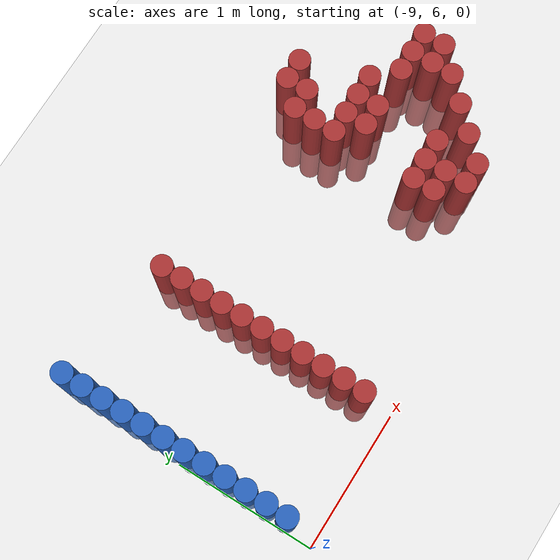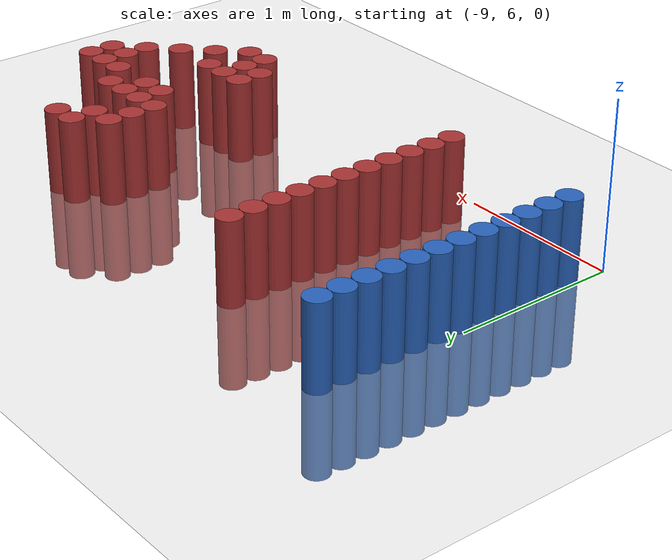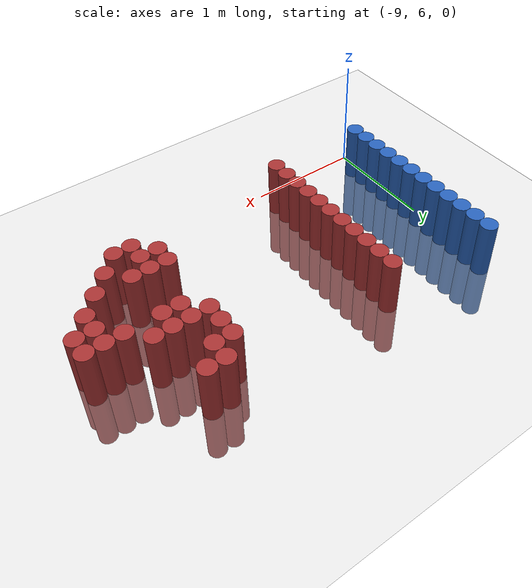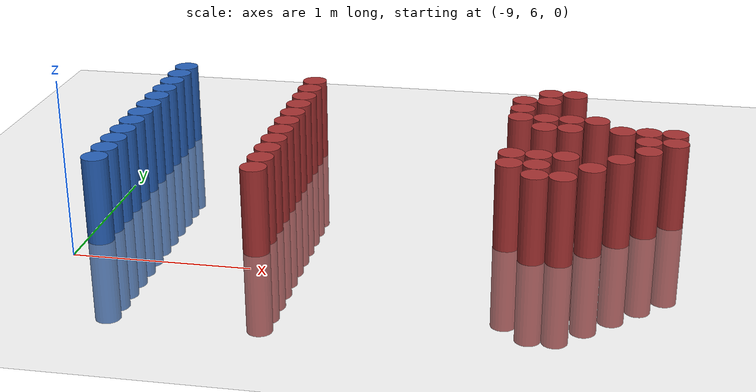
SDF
<sdf version="1.6">
 <world name="default">
  <model name="ground_plane">
   <static>1</static>
   <link name="link">
    <collision name="collision">
     <geometry><plane><normal>0 0 1</normal><size>100 100</size></plane></geometry>
     <surface><friction><ode><mu>100</mu><mu2>50</mu2></ode></friction></surface>
    </collision>
    <visual name="visual">
     <cast_shadows>0</cast_shadows>
     <geometry><plane><normal>0 0 1</normal><size>100 100</size></plane></geometry>
     <material>
      <script><uri>file://media/materials/scripts/gazebo.material</uri><name>Gazebo/Grey</name></script>
     </material>
    </visual>
   </link>
  </model>
  <model name="unit_cylinder_132">
   <static>1</static>
   <pose>-8.925000 6.225000 0.000000 0.000000 0.000000 0.000000</pose>
   <link name="link">
    <inertial>
     <mass>1</mass>
     <inertia><ixx>0.145833</ixx><ixy>0</ixy><ixz>0</ixz><iyy>0.145833</iyy><iyz>0</iyz><izz>0.125</izz></inertia>
    </inertial>
    <collision name="collision">
     <geometry><cylinder><radius>0.075000</radius><length>1</length></cylinder></geometry>
    </collision>
    <visual name="visual">
     <geometry><cylinder><radius>0.075000</radius><length>1</length></cylinder></geometry>
     <material>
      <ambient>0.152000 0.379000 0.720000 1</ambient>
      <diffuse>0.152000 0.379000 0.720000 1</diffuse>
     </material>
     <material>
      <script><name>Gazebo/Grey</name><uri>file://media/materials/scripts/gazebo.material</uri></script>
     </material>
    </visual>
   </link>
  </model>
  <model name="unit_cylinder_133">
   <static>1</static>
   <pose>-8.925000 6.375000 0.000000 0.000000 0.000000 0.000000</pose>
   <link name="link">
    <inertial>
     <mass>1</mass>
     <inertia><ixx>0.145833</ixx><ixy>0</ixy><ixz>0</ixz><iyy>0.145833</iyy><iyz>0</iyz><izz>0.125</izz></inertia>
    </inertial>
    <collision name="collision">
     <geometry><cylinder><radius>0.075000</radius><length>1</length></cylinder></geometry>
    </collision>
    <visual name="visual">
     <geometry><cylinder><radius>0.075000</radius><length>1</length></cylinder></geometry>
     <material>
      <ambient>0.152000 0.379000 0.720000 1</ambient>
      <diffuse>0.152000 0.379000 0.720000 1</diffuse>
     </material>
     <material>
      <script><name>Gazebo/Grey</name><uri>file://media/materials/scripts/gazebo.material</uri></script>
     </material>
    </visual>
   </link>
  </model>
  <model name="unit_cylinder_134">
   <static>1</static>
   <pose>-8.925000 6.525000 0.000000 0.000000 0.000000 0.000000</pose>
   <link name="link">
    <inertial>
     <mass>1</mass>
     <inertia><ixx>0.145833</ixx><ixy>0</ixy><ixz>0</ixz><iyy>0.145833</iyy><iyz>0</iyz><izz>0.125</izz></inertia>
    </inertial>
    <collision name="collision">
     <geometry><cylinder><radius>0.075000</radius><length>1</length></cylinder></geometry>
    </collision>
    <visual name="visual">
     <geometry><cylinder><radius>0.075000</radius><length>1</length></cylinder></geometry>
     <material>
      <ambient>0.152000 0.379000 0.720000 1</ambient>
      <diffuse>0.152000 0.379000 0.720000 1</diffuse>
     </material>
     <material>
      <script><name>Gazebo/Grey</name><uri>file://media/materials/scripts/gazebo.material</uri></script>
     </material>
    </visual>
   </link>
  </model>
  <model name="unit_cylinder_135">
   <static>1</static>
   <pose>-8.925000 6.675000 0.000000 0.000000 0.000000 0.000000</pose>
   <link name="link">
    <inertial>
     <mass>1</mass>
     <inertia><ixx>0.145833</ixx><ixy>0</ixy><ixz>0</ixz><iyy>0.145833</iyy><iyz>0</iyz><izz>0.125</izz></inertia>
    </inertial>
    <collision name="collision">
     <geometry><cylinder><radius>0.075000</radius><length>1</length></cylinder></geometry>
    </collision>
    <visual name="visual">
     <geometry><cylinder><radius>0.075000</radius><length>1</length></cylinder></geometry>
     <material>
      <ambient>0.152000 0.379000 0.720000 1</ambient>
      <diffuse>0.152000 0.379000 0.720000 1</diffuse>
     </material>
     <material>
      <script><name>Gazebo/Grey</name><uri>file://media/materials/scripts/gazebo.material</uri></script>
     </material>
    </visual>
   </link>
  </model>
  <model name="unit_cylinder_136">
   <static>1</static>
   <pose>-8.925000 6.825000 0.000000 0.000000 0.000000 0.000000</pose>
   <link name="link">
    <inertial>
     <mass>1</mass>
     <inertia><ixx>0.145833</ixx><ixy>0</ixy><ixz>0</ixz><iyy>0.145833</iyy><iyz>0</iyz><izz>0.125</izz></inertia>
    </inertial>
    <collision name="collision">
     <geometry><cylinder><radius>0.075000</radius><length>1</length></cylinder></geometry>
    </collision>
    <visual name="visual">
     <geometry><cylinder><radius>0.075000</radius><length>1</length></cylinder></geometry>
     <material>
      <ambient>0.152000 0.379000 0.720000 1</ambient>
      <diffuse>0.152000 0.379000 0.720000 1</diffuse>
     </material>
     <material>
      <script><name>Gazebo/Grey</name><uri>file://media/materials/scripts/gazebo.material</uri></script>
     </material>
    </visual>
   </link>
  </model>
  <model name="unit_cylinder_137">
   <static>1</static>
   <pose>-8.925000 6.975000 0.000000 0.000000 0.000000 0.000000</pose>
   <link name="link">
    <inertial>
     <mass>1</mass>
     <inertia><ixx>0.145833</ixx><ixy>0</ixy><ixz>0</ixz><iyy>0.145833</iyy><iyz>0</iyz><izz>0.125</izz></inertia>
    </inertial>
    <collision name="collision">
     <geometry><cylinder><radius>0.075000</radius><length>1</length></cylinder></geometry>
    </collision>
    <visual name="visual">
     <geometry><cylinder><radius>0.075000</radius><length>1</length></cylinder></geometry>
     <material>
      <ambient>0.152000 0.379000 0.720000 1</ambient>
      <diffuse>0.152000 0.379000 0.720000 1</diffuse>
     </material>
     <material>
      <script><name>Gazebo/Grey</name><uri>file://media/materials/scripts/gazebo.material</uri></script>
     </material>
    </visual>
   </link>
  </model>
  <model name="unit_cylinder_138">
   <static>1</static>
   <pose>-8.925000 7.125000 0.000000 0.000000 0.000000 0.000000</pose>
   <link name="link">
    <inertial>
     <mass>1</mass>
     <inertia><ixx>0.145833</ixx><ixy>0</ixy><ixz>0</ixz><iyy>0.145833</iyy><iyz>0</iyz><izz>0.125</izz></inertia>
    </inertial>
    <collision name="collision">
     <geometry><cylinder><radius>0.075000</radius><length>1</length></cylinder></geometry>
    </collision>
    <visual name="visual">
     <geometry><cylinder><radius>0.075000</radius><length>1</length></cylinder></geometry>
     <material>
      <ambient>0.152000 0.379000 0.720000 1</ambient>
      <diffuse>0.152000 0.379000 0.720000 1</diffuse>
     </material>
     <material>
      <script><name>Gazebo/Grey</name><uri>file://media/materials/scripts/gazebo.material</uri></script>
     </material>
    </visual>
   </link>
  </model>
  <model name="unit_cylinder_139">
   <static>1</static>
   <pose>-8.925000 7.275000 0.000000 0.000000 0.000000 0.000000</pose>
   <link name="link">
    <inertial>
     <mass>1</mass>
     <inertia><ixx>0.145833</ixx><ixy>0</ixy><ixz>0</ixz><iyy>0.145833</iyy><iyz>0</iyz><izz>0.125</izz></inertia>
    </inertial>
    <collision name="collision">
     <geometry><cylinder><radius>0.075000</radius><length>1</length></cylinder></geometry>
    </collision>
    <visual name="visual">
     <geometry><cylinder><radius>0.075000</radius><length>1</length></cylinder></geometry>
     <material>
      <ambient>0.152000 0.379000 0.720000 1</ambient>
      <diffuse>0.152000 0.379000 0.720000 1</diffuse>
     </material>
     <material>
      <script><name>Gazebo/Grey</name><uri>file://media/materials/scripts/gazebo.material</uri></script>
     </material>
    </visual>
   </link>
  </model>
  <model name="unit_cylinder_140">
   <static>1</static>
   <pose>-8.925000 7.425000 0.000000 0.000000 0.000000 0.000000</pose>
   <link name="link">
    <inertial>
     <mass>1</mass>
     <inertia><ixx>0.145833</ixx><ixy>0</ixy><ixz>0</ixz><iyy>0.145833</iyy><iyz>0</iyz><izz>0.125</izz></inertia>
    </inertial>
    <collision name="collision">
     <geometry><cylinder><radius>0.075000</radius><length>1</length></cylinder></geometry>
    </collision>
    <visual name="visual">
     <geometry><cylinder><radius>0.075000</radius><length>1</length></cylinder></geometry>
     <material>
      <ambient>0.152000 0.379000 0.720000 1</ambient>
      <diffuse>0.152000 0.379000 0.720000 1</diffuse>
     </material>
     <material>
      <script><name>Gazebo/Grey</name><uri>file://media/materials/scripts/gazebo.material</uri></script>
     </material>
    </visual>
   </link>
  </model>
  <model name="unit_cylinder_141">
   <static>1</static>
   <pose>-8.925000 7.575000 0.000000 0.000000 0.000000 0.000000</pose>
   <link name="link">
    <inertial>
     <mass>1</mass>
     <inertia><ixx>0.145833</ixx><ixy>0</ixy><ixz>0</ixz><iyy>0.145833</iyy><iyz>0</iyz><izz>0.125</izz></inertia>
    </inertial>
    <collision name="collision">
     <geometry><cylinder><radius>0.075000</radius><length>1</length></cylinder></geometry>
    </collision>
    <visual name="visual">
     <geometry><cylinder><radius>0.075000</radius><length>1</length></cylinder></geometry>
     <material>
      <ambient>0.152000 0.379000 0.720000 1</ambient>
      <diffuse>0.152000 0.379000 0.720000 1</diffuse>
     </material>
     <material>
      <script><name>Gazebo/Grey</name><uri>file://media/materials/scripts/gazebo.material</uri></script>
     </material>
    </visual>
   </link>
  </model>
  <model name="unit_cylinder_142">
   <static>1</static>
   <pose>-8.925000 7.725000 0.000000 0.000000 0.000000 0.000000</pose>
   <link name="link">
    <inertial>
     <mass>1</mass>
     <inertia><ixx>0.145833</ixx><ixy>0</ixy><ixz>0</ixz><iyy>0.145833</iyy><iyz>0</iyz><izz>0.125</izz></inertia>
    </inertial>
    <collision name="collision">
     <geometry><cylinder><radius>0.075000</radius><length>1</length></cylinder></geometry>
    </collision>
    <visual name="visual">
     <geometry><cylinder><radius>0.075000</radius><length>1</length></cylinder></geometry>
     <material>
      <ambient>0.152000 0.379000 0.720000 1</ambient>
      <diffuse>0.152000 0.379000 0.720000 1</diffuse>
     </material>
     <material>
      <script><name>Gazebo/Grey</name><uri>file://media/materials/scripts/gazebo.material</uri></script>
     </material>
    </visual>
   </link>
  </model>
  <model name="unit_cylinder_143">
   <static>1</static>
   <pose>-8.925000 7.875000 0.000000 0.000000 0.000000 0.000000</pose>
   <link name="link">
    <inertial>
     <mass>1</mass>
     <inertia><ixx>0.145833</ixx><ixy>0</ixy><ixz>0</ixz><iyy>0.145833</iyy><iyz>0</iyz><izz>0.125</izz></inertia>
    </inertial>
    <collision name="collision">
     <geometry><cylinder><radius>0.075000</radius><length>1</length></cylinder></geometry>
    </collision>
    <visual name="visual">
     <geometry><cylinder><radius>0.075000</radius><length>1</length></cylinder></geometry>
     <material>
      <ambient>0.152000 0.379000 0.720000 1</ambient>
      <diffuse>0.152000 0.379000 0.720000 1</diffuse>
     </material>
     <material>
      <script><name>Gazebo/Grey</name><uri>file://media/materials/scripts/gazebo.material</uri></script>
     </material>
    </visual>
   </link>
  </model>
  <model name="unit_cylinder_172">
   <static>1</static>
   <pose>-8.025000 6.225000 0.000000 0.000000 0.000000 0.000000</pose>
   <link name="link">
    <inertial>
     <mass>1</mass>
     <inertia><ixx>0.145833</ixx><ixy>0</ixy><ixz>0</ixz><iyy>0.145833</iyy><iyz>0</iyz><izz>0.125</izz></inertia>
    </inertial>
    <collision name="collision">
     <geometry><cylinder><radius>0.075000</radius><length>1</length></cylinder></geometry>
    </collision>
    <visual name="visual">
     <geometry><cylinder><radius>0.075000</radius><length>1</length></cylinder></geometry>
     <material>
      <ambient>0.648000 0.192000 0.192000 1</ambient>
      <diffuse>0.648000 0.192000 0.192000 1</diffuse>
     </material>
     <material>
      <script><name>Gazebo/Grey</name><uri>file://media/materials/scripts/gazebo.material</uri></script>
     </material>
    </visual>
   </link>
  </model>
  <model name="unit_cylinder_173">
   <static>1</static>
   <pose>-8.025000 6.375000 0.000000 0.000000 0.000000 0.000000</pose>
   <link name="link">
    <inertial>
     <mass>1</mass>
     <inertia><ixx>0.145833</ixx><ixy>0</ixy><ixz>0</ixz><iyy>0.145833</iyy><iyz>0</iyz><izz>0.125</izz></inertia>
    </inertial>
    <collision name="collision">
     <geometry><cylinder><radius>0.075000</radius><length>1</length></cylinder></geometry>
    </collision>
    <visual name="visual">
     <geometry><cylinder><radius>0.075000</radius><length>1</length></cylinder></geometry>
     <material>
      <ambient>0.648000 0.192000 0.192000 1</ambient>
      <diffuse>0.648000 0.192000 0.192000 1</diffuse>
     </material>
     <material>
      <script><name>Gazebo/Grey</name><uri>file://media/materials/scripts/gazebo.material</uri></script>
     </material>
    </visual>
   </link>
  </model>
  <model name="unit_cylinder_174">
   <static>1</static>
   <pose>-8.025000 6.525000 0.000000 0.000000 0.000000 0.000000</pose>
   <link name="link">
    <inertial>
     <mass>1</mass>
     <inertia><ixx>0.145833</ixx><ixy>0</ixy><ixz>0</ixz><iyy>0.145833</iyy><iyz>0</iyz><izz>0.125</izz></inertia>
    </inertial>
    <collision name="collision">
     <geometry><cylinder><radius>0.075000</radius><length>1</length></cylinder></geometry>
    </collision>
    <visual name="visual">
     <geometry><cylinder><radius>0.075000</radius><length>1</length></cylinder></geometry>
     <material>
      <ambient>0.648000 0.192000 0.192000 1</ambient>
      <diffuse>0.648000 0.192000 0.192000 1</diffuse>
     </material>
     <material>
      <script><name>Gazebo/Grey</name><uri>file://media/materials/scripts/gazebo.material</uri></script>
     </material>
    </visual>
   </link>
  </model>
  <model name="unit_cylinder_175">
   <static>1</static>
   <pose>-8.025000 6.675000 0.000000 0.000000 0.000000 0.000000</pose>
   <link name="link">
    <inertial>
     <mass>1</mass>
     <inertia><ixx>0.145833</ixx><ixy>0</ixy><ixz>0</ixz><iyy>0.145833</iyy><iyz>0</iyz><izz>0.125</izz></inertia>
    </inertial>
    <collision name="collision">
     <geometry><cylinder><radius>0.075000</radius><length>1</length></cylinder></geometry>
    </collision>
    <visual name="visual">
     <geometry><cylinder><radius>0.075000</radius><length>1</length></cylinder></geometry>
     <material>
      <ambient>0.648000 0.192000 0.192000 1</ambient>
      <diffuse>0.648000 0.192000 0.192000 1</diffuse>
     </material>
     <material>
      <script><name>Gazebo/Grey</name><uri>file://media/materials/scripts/gazebo.material</uri></script>
     </material>
    </visual>
   </link>
  </model>
  <model name="unit_cylinder_176">
   <static>1</static>
   <pose>-8.025000 6.825000 0.000000 0.000000 0.000000 0.000000</pose>
   <link name="link">
    <inertial>
     <mass>1</mass>
     <inertia><ixx>0.145833</ixx><ixy>0</ixy><ixz>0</ixz><iyy>0.145833</iyy><iyz>0</iyz><izz>0.125</izz></inertia>
    </inertial>
    <collision name="collision">
     <geometry><cylinder><radius>0.075000</radius><length>1</length></cylinder></geometry>
    </collision>
    <visual name="visual">
     <geometry><cylinder><radius>0.075000</radius><length>1</length></cylinder></geometry>
     <material>
      <ambient>0.648000 0.192000 0.192000 1</ambient>
      <diffuse>0.648000 0.192000 0.192000 1</diffuse>
     </material>
     <material>
      <script><name>Gazebo/Grey</name><uri>file://media/materials/scripts/gazebo.material</uri></script>
     </material>
    </visual>
   </link>
  </model>
  <model name="unit_cylinder_177">
   <static>1</static>
   <pose>-8.025000 6.975000 0.000000 0.000000 0.000000 0.000000</pose>
   <link name="link">
    <inertial>
     <mass>1</mass>
     <inertia><ixx>0.145833</ixx><ixy>0</ixy><ixz>0</ixz><iyy>0.145833</iyy><iyz>0</iyz><izz>0.125</izz></inertia>
    </inertial>
    <collision name="collision">
     <geometry><cylinder><radius>0.075000</radius><length>1</length></cylinder></geometry>
    </collision>
    <visual name="visual">
     <geometry><cylinder><radius>0.075000</radius><length>1</length></cylinder></geometry>
     <material>
      <ambient>0.648000 0.192000 0.192000 1</ambient>
      <diffuse>0.648000 0.192000 0.192000 1</diffuse>
     </material>
     <material>
      <script><name>Gazebo/Grey</name><uri>file://media/materials/scripts/gazebo.material</uri></script>
     </material>
    </visual>
   </link>
  </model>
  <model name="unit_cylinder_178">
   <static>1</static>
   <pose>-8.025000 7.125000 0.000000 0.000000 0.000000 0.000000</pose>
   <link name="link">
    <inertial>
     <mass>1</mass>
     <inertia><ixx>0.145833</ixx><ixy>0</ixy><ixz>0</ixz><iyy>0.145833</iyy><iyz>0</iyz><izz>0.125</izz></inertia>
    </inertial>
    <collision name="collision">
     <geometry><cylinder><radius>0.075000</radius><length>1</length></cylinder></geometry>
    </collision>
    <visual name="visual">
     <geometry><cylinder><radius>0.075000</radius><length>1</length></cylinder></geometry>
     <material>
      <ambient>0.648000 0.192000 0.192000 1</ambient>
      <diffuse>0.648000 0.192000 0.192000 1</diffuse>
     </material>
     <material>
      <script><name>Gazebo/Grey</name><uri>file://media/materials/scripts/gazebo.material</uri></script>
     </material>
    </visual>
   </link>
  </model>
  <model name="unit_cylinder_179">
   <static>1</static>
   <pose>-8.025000 7.275000 0.000000 0.000000 0.000000 0.000000</pose>
   <link name="link">
    <inertial>
     <mass>1</mass>
     <inertia><ixx>0.145833</ixx><ixy>0</ixy><ixz>0</ixz><iyy>0.145833</iyy><iyz>0</iyz><izz>0.125</izz></inertia>
    </inertial>
    <collision name="collision">
     <geometry><cylinder><radius>0.075000</radius><length>1</length></cylinder></geometry>
    </collision>
    <visual name="visual">
     <geometry><cylinder><radius>0.075000</radius><length>1</length></cylinder></geometry>
     <material>
      <ambient>0.648000 0.192000 0.192000 1</ambient>
      <diffuse>0.648000 0.192000 0.192000 1</diffuse>
     </material>
     <material>
      <script><name>Gazebo/Grey</name><uri>file://media/materials/scripts/gazebo.material</uri></script>
     </material>
    </visual>
   </link>
  </model>
  <model name="unit_cylinder_180">
   <static>1</static>
   <pose>-8.025000 7.425000 0.000000 0.000000 0.000000 0.000000</pose>
   <link name="link">
    <inertial>
     <mass>1</mass>
     <inertia><ixx>0.145833</ixx><ixy>0</ixy><ixz>0</ixz><iyy>0.145833</iyy><iyz>0</iyz><izz>0.125</izz></inertia>
    </inertial>
    <collision name="collision">
     <geometry><cylinder><radius>0.075000</radius><length>1</length></cylinder></geometry>
    </collision>
    <visual name="visual">
     <geometry><cylinder><radius>0.075000</radius><length>1</length></cylinder></geometry>
     <material>
      <ambient>0.648000 0.192000 0.192000 1</ambient>
      <diffuse>0.648000 0.192000 0.192000 1</diffuse>
     </material>
     <material>
      <script><name>Gazebo/Grey</name><uri>file://media/materials/scripts/gazebo.material</uri></script>
     </material>
    </visual>
   </link>
  </model>
  <model name="unit_cylinder_181">
   <static>1</static>
   <pose>-8.025000 7.575000 0.000000 0.000000 0.000000 0.000000</pose>
   <link name="link">
    <inertial>
     <mass>1</mass>
     <inertia><ixx>0.145833</ixx><ixy>0</ixy><ixz>0</ixz><iyy>0.145833</iyy><iyz>0</iyz><izz>0.125</izz></inertia>
    </inertial>
    <collision name="collision">
     <geometry><cylinder><radius>0.075000</radius><length>1</length></cylinder></geometry>
    </collision>
    <visual name="visual">
     <geometry><cylinder><radius>0.075000</radius><length>1</length></cylinder></geometry>
     <material>
      <ambient>0.648000 0.192000 0.192000 1</ambient>
      <diffuse>0.648000 0.192000 0.192000 1</diffuse>
     </material>
     <material>
      <script><name>Gazebo/Grey</name><uri>file://media/materials/scripts/gazebo.material</uri></script>
     </material>
    </visual>
   </link>
  </model>
  <model name="unit_cylinder_182">
   <static>1</static>
   <pose>-8.025000 7.725000 0.000000 0.000000 0.000000 0.000000</pose>
   <link name="link">
    <inertial>
     <mass>1</mass>
     <inertia><ixx>0.145833</ixx><ixy>0</ixy><ixz>0</ixz><iyy>0.145833</iyy><iyz>0</iyz><izz>0.125</izz></inertia>
    </inertial>
    <collision name="collision">
     <geometry><cylinder><radius>0.075000</radius><length>1</length></cylinder></geometry>
    </collision>
    <visual name="visual">
     <geometry><cylinder><radius>0.075000</radius><length>1</length></cylinder></geometry>
     <material>
      <ambient>0.648000 0.192000 0.192000 1</ambient>
      <diffuse>0.648000 0.192000 0.192000 1</diffuse>
     </material>
     <material>
      <script><name>Gazebo/Grey</name><uri>file://media/materials/scripts/gazebo.material</uri></script>
     </material>
    </visual>
   </link>
  </model>
  <model name="unit_cylinder_197">
   <static>1</static>
   <pose>-6.675000 6.525000 0.000000 0.000000 0.000000 0.000000</pose>
   <link name="link">
    <inertial>
     <mass>1</mass>
     <inertia><ixx>0.145833</ixx><ixy>0</ixy><ixz>0</ixz><iyy>0.145833</iyy><iyz>0</iyz><izz>0.125</izz></inertia>
    </inertial>
    <collision name="collision">
     <geometry><cylinder><radius>0.075000</radius><length>1</length></cylinder></geometry>
    </collision>
    <visual name="visual">
     <geometry><cylinder><radius>0.075000</radius><length>1</length></cylinder></geometry>
     <material>
      <ambient>0.648000 0.192000 0.192000 1</ambient>
      <diffuse>0.648000 0.192000 0.192000 1</diffuse>
     </material>
     <material>
      <script><name>Gazebo/Grey</name><uri>file://media/materials/scripts/gazebo.material</uri></script>
     </material>
    </visual>
   </link>
  </model>
  <model name="unit_cylinder_198">
   <static>1</static>
   <pose>-6.675000 6.675000 0.000000 0.000000 0.000000 0.000000</pose>
   <link name="link">
    <inertial>
     <mass>1</mass>
     <inertia><ixx>0.145833</ixx><ixy>0</ixy><ixz>0</ixz><iyy>0.145833</iyy><iyz>0</iyz><izz>0.125</izz></inertia>
    </inertial>
    <collision name="collision">
     <geometry><cylinder><radius>0.075000</radius><length>1</length></cylinder></geometry>
    </collision>
    <visual name="visual">
     <geometry><cylinder><radius>0.075000</radius><length>1</length></cylinder></geometry>
     <material>
      <ambient>0.648000 0.192000 0.192000 1</ambient>
      <diffuse>0.648000 0.192000 0.192000 1</diffuse>
     </material>
     <material>
      <script><name>Gazebo/Grey</name><uri>file://media/materials/scripts/gazebo.material</uri></script>
     </material>
    </visual>
   </link>
  </model>
  <model name="unit_cylinder_199">
   <static>1</static>
   <pose>-6.675000 7.275000 0.000000 0.000000 0.000000 0.000000</pose>
   <link name="link">
    <inertial>
     <mass>1</mass>
     <inertia><ixx>0.145833</ixx><ixy>0</ixy><ixz>0</ixz><iyy>0.145833</iyy><iyz>0</iyz><izz>0.125</izz></inertia>
    </inertial>
    <collision name="collision">
     <geometry><cylinder><radius>0.075000</radius><length>1</length></cylinder></geometry>
    </collision>
    <visual name="visual">
     <geometry><cylinder><radius>0.075000</radius><length>1</length></cylinder></geometry>
     <material>
      <ambient>0.648000 0.192000 0.192000 1</ambient>
      <diffuse>0.648000 0.192000 0.192000 1</diffuse>
     </material>
     <material>
      <script><name>Gazebo/Grey</name><uri>file://media/materials/scripts/gazebo.material</uri></script>
     </material>
    </visual>
   </link>
  </model>
  <model name="unit_cylinder_200">
   <static>1</static>
   <pose>-6.675000 7.425000 0.000000 0.000000 0.000000 0.000000</pose>
   <link name="link">
    <inertial>
     <mass>1</mass>
     <inertia><ixx>0.145833</ixx><ixy>0</ixy><ixz>0</ixz><iyy>0.145833</iyy><iyz>0</iyz><izz>0.125</izz></inertia>
    </inertial>
    <collision name="collision">
     <geometry><cylinder><radius>0.075000</radius><length>1</length></cylinder></geometry>
    </collision>
    <visual name="visual">
     <geometry><cylinder><radius>0.075000</radius><length>1</length></cylinder></geometry>
     <material>
      <ambient>0.648000 0.192000 0.192000 1</ambient>
      <diffuse>0.648000 0.192000 0.192000 1</diffuse>
     </material>
     <material>
      <script><name>Gazebo/Grey</name><uri>file://media/materials/scripts/gazebo.material</uri></script>
     </material>
    </visual>
   </link>
  </model>
  <model name="unit_cylinder_201">
   <static>1</static>
   <pose>-6.675000 7.575000 0.000000 0.000000 0.000000 0.000000</pose>
   <link name="link">
    <inertial>
     <mass>1</mass>
     <inertia><ixx>0.145833</ixx><ixy>0</ixy><ixz>0</ixz><iyy>0.145833</iyy><iyz>0</iyz><izz>0.125</izz></inertia>
    </inertial>
    <collision name="collision">
     <geometry><cylinder><radius>0.075000</radius><length>1</length></cylinder></geometry>
    </collision>
    <visual name="visual">
     <geometry><cylinder><radius>0.075000</radius><length>1</length></cylinder></geometry>
     <material>
      <ambient>0.648000 0.192000 0.192000 1</ambient>
      <diffuse>0.648000 0.192000 0.192000 1</diffuse>
     </material>
     <material>
      <script><name>Gazebo/Grey</name><uri>file://media/materials/scripts/gazebo.material</uri></script>
     </material>
    </visual>
   </link>
  </model>
  <model name="unit_cylinder_205">
   <static>1</static>
   <pose>-6.525000 6.375000 0.000000 0.000000 0.000000 0.000000</pose>
   <link name="link">
    <inertial>
     <mass>1</mass>
     <inertia><ixx>0.145833</ixx><ixy>0</ixy><ixz>0</ixz><iyy>0.145833</iyy><iyz>0</iyz><izz>0.125</izz></inertia>
    </inertial>
    <collision name="collision">
     <geometry><cylinder><radius>0.075000</radius><length>1</length></cylinder></geometry>
    </collision>
    <visual name="visual">
     <geometry><cylinder><radius>0.075000</radius><length>1</length></cylinder></geometry>
     <material>
      <ambient>0.648000 0.192000 0.192000 1</ambient>
      <diffuse>0.648000 0.192000 0.192000 1</diffuse>
     </material>
     <material>
      <script><name>Gazebo/Grey</name><uri>file://media/materials/scripts/gazebo.material</uri></script>
     </material>
    </visual>
   </link>
  </model>
  <model name="unit_cylinder_206">
   <static>1</static>
   <pose>-6.525000 6.525000 0.000000 0.000000 0.000000 0.000000</pose>
   <link name="link">
    <inertial>
     <mass>1</mass>
     <inertia><ixx>0.145833</ixx><ixy>0</ixy><ixz>0</ixz><iyy>0.145833</iyy><iyz>0</iyz><izz>0.125</izz></inertia>
    </inertial>
    <collision name="collision">
     <geometry><cylinder><radius>0.075000</radius><length>1</length></cylinder></geometry>
    </collision>
    <visual name="visual">
     <geometry><cylinder><radius>0.075000</radius><length>1</length></cylinder></geometry>
     <material>
      <ambient>0.648000 0.192000 0.192000 1</ambient>
      <diffuse>0.648000 0.192000 0.192000 1</diffuse>
     </material>
     <material>
      <script><name>Gazebo/Grey</name><uri>file://media/materials/scripts/gazebo.material</uri></script>
     </material>
    </visual>
   </link>
  </model>
  <model name="unit_cylinder_207">
   <static>1</static>
   <pose>-6.525000 6.675000 0.000000 0.000000 0.000000 0.000000</pose>
   <link name="link">
    <inertial>
     <mass>1</mass>
     <inertia><ixx>0.145833</ixx><ixy>0</ixy><ixz>0</ixz><iyy>0.145833</iyy><iyz>0</iyz><izz>0.125</izz></inertia>
    </inertial>
    <collision name="collision">
     <geometry><cylinder><radius>0.075000</radius><length>1</length></cylinder></geometry>
    </collision>
    <visual name="visual">
     <geometry><cylinder><radius>0.075000</radius><length>1</length></cylinder></geometry>
     <material>
      <ambient>0.648000 0.192000 0.192000 1</ambient>
      <diffuse>0.648000 0.192000 0.192000 1</diffuse>
     </material>
     <material>
      <script><name>Gazebo/Grey</name><uri>file://media/materials/scripts/gazebo.material</uri></script>
     </material>
    </visual>
   </link>
  </model>
  <model name="unit_cylinder_208">
   <static>1</static>
   <pose>-6.525000 7.125000 0.000000 0.000000 0.000000 0.000000</pose>
   <link name="link">
    <inertial>
     <mass>1</mass>
     <inertia><ixx>0.145833</ixx><ixy>0</ixy><ixz>0</ixz><iyy>0.145833</iyy><iyz>0</iyz><izz>0.125</izz></inertia>
    </inertial>
    <collision name="collision">
     <geometry><cylinder><radius>0.075000</radius><length>1</length></cylinder></geometry>
    </collision>
    <visual name="visual">
     <geometry><cylinder><radius>0.075000</radius><length>1</length></cylinder></geometry>
     <material>
      <ambient>0.648000 0.192000 0.192000 1</ambient>
      <diffuse>0.648000 0.192000 0.192000 1</diffuse>
     </material>
     <material>
      <script><name>Gazebo/Grey</name><uri>file://media/materials/scripts/gazebo.material</uri></script>
     </material>
    </visual>
   </link>
  </model>
  <model name="unit_cylinder_209">
   <static>1</static>
   <pose>-6.525000 7.275000 0.000000 0.000000 0.000000 0.000000</pose>
   <link name="link">
    <inertial>
     <mass>1</mass>
     <inertia><ixx>0.145833</ixx><ixy>0</ixy><ixz>0</ixz><iyy>0.145833</iyy><iyz>0</iyz><izz>0.125</izz></inertia>
    </inertial>
    <collision name="collision">
     <geometry><cylinder><radius>0.075000</radius><length>1</length></cylinder></geometry>
    </collision>
    <visual name="visual">
     <geometry><cylinder><radius>0.075000</radius><length>1</length></cylinder></geometry>
     <material>
      <ambient>0.648000 0.192000 0.192000 1</ambient>
      <diffuse>0.648000 0.192000 0.192000 1</diffuse>
     </material>
     <material>
      <script><name>Gazebo/Grey</name><uri>file://media/materials/scripts/gazebo.material</uri></script>
     </material>
    </visual>
   </link>
  </model>
  <model name="unit_cylinder_210">
   <static>1</static>
   <pose>-6.525000 7.575000 0.000000 0.000000 0.000000 0.000000</pose>
   <link name="link">
    <inertial>
     <mass>1</mass>
     <inertia><ixx>0.145833</ixx><ixy>0</ixy><ixz>0</ixz><iyy>0.145833</iyy><iyz>0</iyz><izz>0.125</izz></inertia>
    </inertial>
    <collision name="collision">
     <geometry><cylinder><radius>0.075000</radius><length>1</length></cylinder></geometry>
    </collision>
    <visual name="visual">
     <geometry><cylinder><radius>0.075000</radius><length>1</length></cylinder></geometry>
     <material>
      <ambient>0.648000 0.192000 0.192000 1</ambient>
      <diffuse>0.648000 0.192000 0.192000 1</diffuse>
     </material>
     <material>
      <script><name>Gazebo/Grey</name><uri>file://media/materials/scripts/gazebo.material</uri></script>
     </material>
    </visual>
   </link>
  </model>
  <model name="unit_cylinder_211">
   <static>1</static>
   <pose>-6.525000 7.725000 0.000000 0.000000 0.000000 0.000000</pose>
   <link name="link">
    <inertial>
     <mass>1</mass>
     <inertia><ixx>0.145833</ixx><ixy>0</ixy><ixz>0</ixz><iyy>0.145833</iyy><iyz>0</iyz><izz>0.125</izz></inertia>
    </inertial>
    <collision name="collision">
     <geometry><cylinder><radius>0.075000</radius><length>1</length></cylinder></geometry>
    </collision>
    <visual name="visual">
     <geometry><cylinder><radius>0.075000</radius><length>1</length></cylinder></geometry>
     <material>
      <ambient>0.648000 0.192000 0.192000 1</ambient>
      <diffuse>0.648000 0.192000 0.192000 1</diffuse>
     </material>
     <material>
      <script><name>Gazebo/Grey</name><uri>file://media/materials/scripts/gazebo.material</uri></script>
     </material>
    </visual>
   </link>
  </model>
  <model name="unit_cylinder_215">
   <static>1</static>
   <pose>-6.375000 6.375000 0.000000 0.000000 0.000000 0.000000</pose>
   <link name="link">
    <inertial>
     <mass>1</mass>
     <inertia><ixx>0.145833</ixx><ixy>0</ixy><ixz>0</ixz><iyy>0.145833</iyy><iyz>0</iyz><izz>0.125</izz></inertia>
    </inertial>
    <collision name="collision">
     <geometry><cylinder><radius>0.075000</radius><length>1</length></cylinder></geometry>
    </collision>
    <visual name="visual">
     <geometry><cylinder><radius>0.075000</radius><length>1</length></cylinder></geometry>
     <material>
      <ambient>0.648000 0.192000 0.192000 1</ambient>
      <diffuse>0.648000 0.192000 0.192000 1</diffuse>
     </material>
     <material>
      <script><name>Gazebo/Grey</name><uri>file://media/materials/scripts/gazebo.material</uri></script>
     </material>
    </visual>
   </link>
  </model>
  <model name="unit_cylinder_216">
   <static>1</static>
   <pose>-6.375000 6.675000 0.000000 0.000000 0.000000 0.000000</pose>
   <link name="link">
    <inertial>
     <mass>1</mass>
     <inertia><ixx>0.145833</ixx><ixy>0</ixy><ixz>0</ixz><iyy>0.145833</iyy><iyz>0</iyz><izz>0.125</izz></inertia>
    </inertial>
    <collision name="collision">
     <geometry><cylinder><radius>0.075000</radius><length>1</length></cylinder></geometry>
    </collision>
    <visual name="visual">
     <geometry><cylinder><radius>0.075000</radius><length>1</length></cylinder></geometry>
     <material>
      <ambient>0.648000 0.192000 0.192000 1</ambient>
      <diffuse>0.648000 0.192000 0.192000 1</diffuse>
     </material>
     <material>
      <script><name>Gazebo/Grey</name><uri>file://media/materials/scripts/gazebo.material</uri></script>
     </material>
    </visual>
   </link>
  </model>
  <model name="unit_cylinder_217">
   <static>1</static>
   <pose>-6.375000 7.125000 0.000000 0.000000 0.000000 0.000000</pose>
   <link name="link">
    <inertial>
     <mass>1</mass>
     <inertia><ixx>0.145833</ixx><ixy>0</ixy><ixz>0</ixz><iyy>0.145833</iyy><iyz>0</iyz><izz>0.125</izz></inertia>
    </inertial>
    <collision name="collision">
     <geometry><cylinder><radius>0.075000</radius><length>1</length></cylinder></geometry>
    </collision>
    <visual name="visual">
     <geometry><cylinder><radius>0.075000</radius><length>1</length></cylinder></geometry>
     <material>
      <ambient>0.648000 0.192000 0.192000 1</ambient>
      <diffuse>0.648000 0.192000 0.192000 1</diffuse>
     </material>
     <material>
      <script><name>Gazebo/Grey</name><uri>file://media/materials/scripts/gazebo.material</uri></script>
     </material>
    </visual>
   </link>
  </model>
  <model name="unit_cylinder_218">
   <static>1</static>
   <pose>-6.375000 7.275000 0.000000 0.000000 0.000000 0.000000</pose>
   <link name="link">
    <inertial>
     <mass>1</mass>
     <inertia><ixx>0.145833</ixx><ixy>0</ixy><ixz>0</ixz><iyy>0.145833</iyy><iyz>0</iyz><izz>0.125</izz></inertia>
    </inertial>
    <collision name="collision">
     <geometry><cylinder><radius>0.075000</radius><length>1</length></cylinder></geometry>
    </collision>
    <visual name="visual">
     <geometry><cylinder><radius>0.075000</radius><length>1</length></cylinder></geometry>
     <material>
      <ambient>0.648000 0.192000 0.192000 1</ambient>
      <diffuse>0.648000 0.192000 0.192000 1</diffuse>
     </material>
     <material>
      <script><name>Gazebo/Grey</name><uri>file://media/materials/scripts/gazebo.material</uri></script>
     </material>
    </visual>
   </link>
  </model>
  <model name="unit_cylinder_219">
   <static>1</static>
   <pose>-6.375000 7.725000 0.000000 0.000000 0.000000 0.000000</pose>
   <link name="link">
    <inertial>
     <mass>1</mass>
     <inertia><ixx>0.145833</ixx><ixy>0</ixy><ixz>0</ixz><iyy>0.145833</iyy><iyz>0</iyz><izz>0.125</izz></inertia>
    </inertial>
    <collision name="collision">
     <geometry><cylinder><radius>0.075000</radius><length>1</length></cylinder></geometry>
    </collision>
    <visual name="visual">
     <geometry><cylinder><radius>0.075000</radius><length>1</length></cylinder></geometry>
     <material>
      <ambient>0.648000 0.192000 0.192000 1</ambient>
      <diffuse>0.648000 0.192000 0.192000 1</diffuse>
     </material>
     <material>
      <script><name>Gazebo/Grey</name><uri>file://media/materials/scripts/gazebo.material</uri></script>
     </material>
    </visual>
   </link>
  </model>
  <model name="unit_cylinder_222">
   <static>1</static>
   <pose>-6.225000 6.525000 0.000000 0.000000 0.000000 0.000000</pose>
   <link name="link">
    <inertial>
     <mass>1</mass>
     <inertia><ixx>0.145833</ixx><ixy>0</ixy><ixz>0</ixz><iyy>0.145833</iyy><iyz>0</iyz><izz>0.125</izz></inertia>
    </inertial>
    <collision name="collision">
     <geometry><cylinder><radius>0.075000</radius><length>1</length></cylinder></geometry>
    </collision>
    <visual name="visual">
     <geometry><cylinder><radius>0.075000</radius><length>1</length></cylinder></geometry>
     <material>
      <ambient>0.648000 0.192000 0.192000 1</ambient>
      <diffuse>0.648000 0.192000 0.192000 1</diffuse>
     </material>
     <material>
      <script><name>Gazebo/Grey</name><uri>file://media/materials/scripts/gazebo.material</uri></script>
     </material>
    </visual>
   </link>
  </model>
  <model name="unit_cylinder_223">
   <static>1</static>
   <pose>-6.225000 7.275000 0.000000 0.000000 0.000000 0.000000</pose>
   <link name="link">
    <inertial>
     <mass>1</mass>
     <inertia><ixx>0.145833</ixx><ixy>0</ixy><ixz>0</ixz><iyy>0.145833</iyy><iyz>0</iyz><izz>0.125</izz></inertia>
    </inertial>
    <collision name="collision">
     <geometry><cylinder><radius>0.075000</radius><length>1</length></cylinder></geometry>
    </collision>
    <visual name="visual">
     <geometry><cylinder><radius>0.075000</radius><length>1</length></cylinder></geometry>
     <material>
      <ambient>0.648000 0.192000 0.192000 1</ambient>
      <diffuse>0.648000 0.192000 0.192000 1</diffuse>
     </material>
     <material>
      <script><name>Gazebo/Grey</name><uri>file://media/materials/scripts/gazebo.material</uri></script>
     </material>
    </visual>
   </link>
  </model>
  <model name="unit_cylinder_228">
   <static>1</static>
   <pose>-6.075000 6.675000 0.000000 0.000000 0.000000 0.000000</pose>
   <link name="link">
    <inertial>
     <mass>1</mass>
     <inertia><ixx>0.145833</ixx><ixy>0</ixy><ixz>0</ixz><iyy>0.145833</iyy><iyz>0</iyz><izz>0.125</izz></inertia>
    </inertial>
    <collision name="collision">
     <geometry><cylinder><radius>0.075000</radius><length>1</length></cylinder></geometry>
    </collision>
    <visual name="visual">
     <geometry><cylinder><radius>0.075000</radius><length>1</length></cylinder></geometry>
     <material>
      <ambient>0.648000 0.192000 0.192000 1</ambient>
      <diffuse>0.648000 0.192000 0.192000 1</diffuse>
     </material>
     <material>
      <script><name>Gazebo/Grey</name><uri>file://media/materials/scripts/gazebo.material</uri></script>
     </material>
    </visual>
   </link>
  </model>
  <model name="unit_cylinder_229">
   <static>1</static>
   <pose>-6.075000 7.125000 0.000000 0.000000 0.000000 0.000000</pose>
   <link name="link">
    <inertial>
     <mass>1</mass>
     <inertia><ixx>0.145833</ixx><ixy>0</ixy><ixz>0</ixz><iyy>0.145833</iyy><iyz>0</iyz><izz>0.125</izz></inertia>
    </inertial>
    <collision name="collision">
     <geometry><cylinder><radius>0.075000</radius><length>1</length></cylinder></geometry>
    </collision>
    <visual name="visual">
     <geometry><cylinder><radius>0.075000</radius><length>1</length></cylinder></geometry>
     <material>
      <ambient>0.648000 0.192000 0.192000 1</ambient>
      <diffuse>0.648000 0.192000 0.192000 1</diffuse>
     </material>
     <material>
      <script><name>Gazebo/Grey</name><uri>file://media/materials/scripts/gazebo.material</uri></script>
     </material>
    </visual>
   </link>
  </model>
  <model name="unit_cylinder_234">
   <static>1</static>
   <pose>-5.925000 6.825000 0.000000 0.000000 0.000000 0.000000</pose>
   <link name="link">
    <inertial>
     <mass>1</mass>
     <inertia><ixx>0.145833</ixx><ixy>0</ixy><ixz>0</ixz><iyy>0.145833</iyy><iyz>0</iyz><izz>0.125</izz></inertia>
    </inertial>
    <collision name="collision">
     <geometry><cylinder><radius>0.075000</radius><length>1</length></cylinder></geometry>
    </collision>
    <visual name="visual">
     <geometry><cylinder><radius>0.075000</radius><length>1</length></cylinder></geometry>
     <material>
      <ambient>0.648000 0.192000 0.192000 1</ambient>
      <diffuse>0.648000 0.192000 0.192000 1</diffuse>
     </material>
     <material>
      <script><name>Gazebo/Grey</name><uri>file://media/materials/scripts/gazebo.material</uri></script>
     </material>
    </visual>
   </link>
  </model>
  <model name="unit_cylinder_235">
   <static>1</static>
   <pose>-5.925000 6.975000 0.000000 0.000000 0.000000 0.000000</pose>
   <link name="link">
    <inertial>
     <mass>1</mass>
     <inertia><ixx>0.145833</ixx><ixy>0</ixy><ixz>0</ixz><iyy>0.145833</iyy><iyz>0</iyz><izz>0.125</izz></inertia>
    </inertial>
    <collision name="collision">
     <geometry><cylinder><radius>0.075000</radius><length>1</length></cylinder></geometry>
    </collision>
    <visual name="visual">
     <geometry><cylinder><radius>0.075000</radius><length>1</length></cylinder></geometry>
     <material>
      <ambient>0.648000 0.192000 0.192000 1</ambient>
      <diffuse>0.648000 0.192000 0.192000 1</diffuse>
     </material>
     <material>
      <script><name>Gazebo/Grey</name><uri>file://media/materials/scripts/gazebo.material</uri></script>
     </material>
    </visual>
   </link>
  </model>
  <model name="unit_cylinder_236">
   <static>1</static>
   <pose>-5.925000 7.125000 0.000000 0.000000 0.000000 0.000000</pose>
   <link name="link">
    <inertial>
     <mass>1</mass>
     <inertia><ixx>0.145833</ixx><ixy>0</ixy><ixz>0</ixz><iyy>0.145833</iyy><iyz>0</iyz><izz>0.125</izz></inertia>
    </inertial>
    <collision name="collision">
     <geometry><cylinder><radius>0.075000</radius><length>1</length></cylinder></geometry>
    </collision>
    <visual name="visual">
     <geometry><cylinder><radius>0.075000</radius><length>1</length></cylinder></geometry>
     <material>
      <ambient>0.648000 0.192000 0.192000 1</ambient>
      <diffuse>0.648000 0.192000 0.192000 1</diffuse>
     </material>
     <material>
      <script><name>Gazebo/Grey</name><uri>file://media/materials/scripts/gazebo.material</uri></script>
     </material>
    </visual>
   </link>
  </model>
  <model name="unit_cylinder_240">
   <static>1</static>
   <pose>-5.775000 6.975000 0.000000 0.000000 0.000000 0.000000</pose>
   <link name="link">
    <inertial>
     <mass>1</mass>
     <inertia><ixx>0.145833</ixx><ixy>0</ixy><ixz>0</ixz><iyy>0.145833</iyy><iyz>0</iyz><izz>0.125</izz></inertia>
    </inertial>
    <collision name="collision">
     <geometry><cylinder><radius>0.075000</radius><length>1</length></cylinder></geometry>
    </collision>
    <visual name="visual">
     <geometry><cylinder><radius>0.075000</radius><length>1</length></cylinder></geometry>
     <material>
      <ambient>0.648000 0.192000 0.192000 1</ambient>
      <diffuse>0.648000 0.192000 0.192000 1</diffuse>
     </material>
     <material>
      <script><name>Gazebo/Grey</name><uri>file://media/materials/scripts/gazebo.material</uri></script>
     </material>
    </visual>
   </link>
  </model>
  <model name="unit_cylinder_241">
   <static>1</static>
   <pose>-5.775000 7.125000 0.000000 0.000000 0.000000 0.000000</pose>
   <link name="link">
    <inertial>
     <mass>1</mass>
     <inertia><ixx>0.145833</ixx><ixy>0</ixy><ixz>0</ixz><iyy>0.145833</iyy><iyz>0</iyz><izz>0.125</izz></inertia>
    </inertial>
    <collision name="collision">
     <geometry><cylinder><radius>0.075000</radius><length>1</length></cylinder></geometry>
    </collision>
    <visual name="visual">
     <geometry><cylinder><radius>0.075000</radius><length>1</length></cylinder></geometry>
     <material>
      <ambient>0.648000 0.192000 0.192000 1</ambient>
      <diffuse>0.648000 0.192000 0.192000 1</diffuse>
     </material>
     <material>
      <script><name>Gazebo/Grey</name><uri>file://media/materials/scripts/gazebo.material</uri></script>
     </material>
    </visual>
   </link>
  </model>
 </world>
</sdf>
